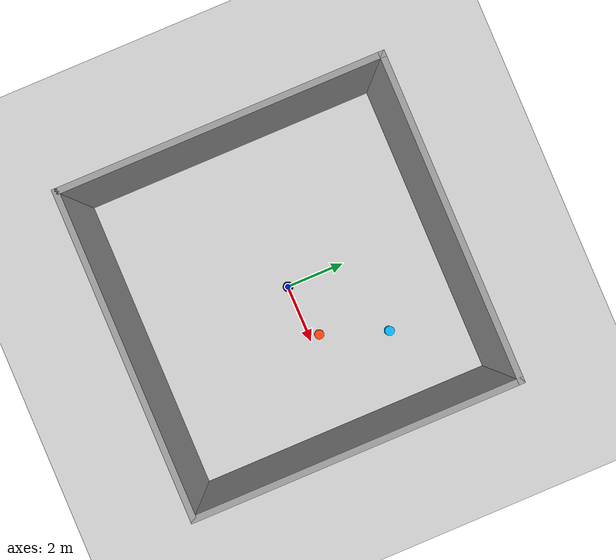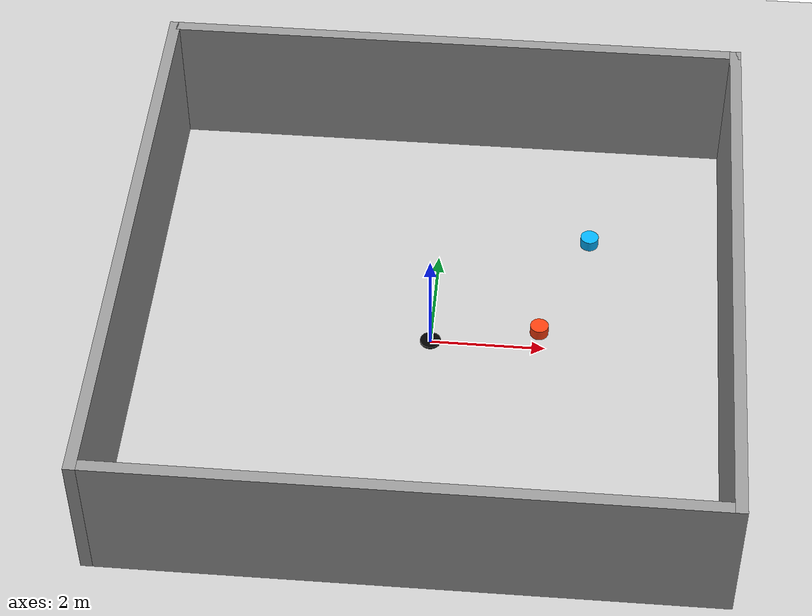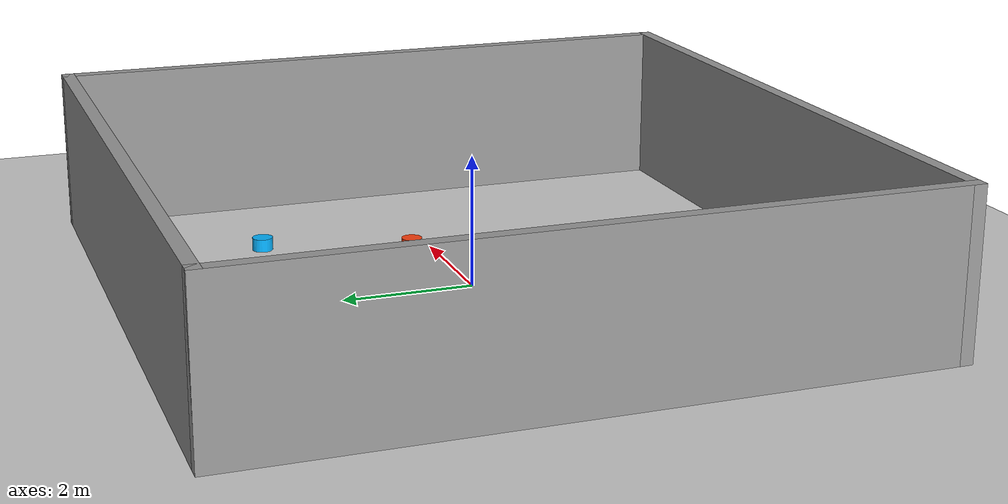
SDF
<?xml version="1.0" ?>
<sdf version="1.5">
  <world name="default">
    <include>
      <uri>model://sun</uri>
    </include>

    <include>
      <uri>model://ground_plane</uri>
    </include>

    <model name="pursuer_umbrella">
      <pose>1.88 0.34 0.12 0 0 0</pose>
      <link name="body">
        <collision name="collision">
          <geometry>
            <cylinder>
              <radius>0.16</radius>
              <length>0.20</length>
            </cylinder>
          </geometry>
        </collision>
        <visual name="visual">
          <geometry>
            <cylinder>
              <radius>0.16</radius>
              <length>0.20</length>
            </cylinder>
          </geometry>
          <material>
            <ambient>1.0 0.12 0.04 1</ambient>
            <diffuse>1.0 0.25 0.06 1</diffuse>
          </material>
        </visual>
        <inertial>
          <mass>1.0</mass>
          <inertia>
            <ixx>0.005</ixx>
            <iyy>0.005</iyy>
            <izz>0.005</izz>
            <ixy>0</ixy>
            <ixz>0</ixz>
            <iyz>0</iyz>
          </inertia>
        </inertial>
      </link>
    </model>

    <model name="evader_umbrella">
      <pose>2.68 2.55 0.12 0 0 0</pose>
      <link name="body">
        <collision name="collision">
          <geometry>
            <cylinder>
              <radius>0.16</radius>
              <length>0.20</length>
            </cylinder>
          </geometry>
        </collision>
        <visual name="visual">
          <geometry>
            <cylinder>
              <radius>0.16</radius>
              <length>0.20</length>
            </cylinder>
          </geometry>
          <material>
            <ambient>0.00 0.45 1.0 1</ambient>
            <diffuse>0.02 0.70 1.0 1</diffuse>
          </material>
        </visual>
        <inertial>
          <mass>1.0</mass>
          <inertia>
            <ixx>0.005</ixx>
            <iyy>0.005</iyy>
            <izz>0.005</izz>
            <ixy>0</ixy>
            <ixz>0</ixz>
            <iyz>0</iyz>
          </inertia>
        </inertial>
      </link>
    </model>

    <model name="umbrella_center_marker">
      <pose>0 0 0.035 0 0 0</pose>
      <static>1</static>
      <link name="body">
        <visual name="visual">
          <geometry>
            <cylinder>
              <radius>0.18</radius>
              <length>0.04</length>
            </cylinder>
          </geometry>
          <material>
            <ambient>0 0 0 1</ambient>
            <diffuse>0 0 0 1</diffuse>
          </material>
        </visual>
      </link>
    </model>

    <model name="myroom10">
      <pose frame="">0 0 0 0 0 0</pose>
      <link name="Wall_4">
        <collision name="Wall_4_Collision">
          <geometry>
            <box>
              <size>10.4 0.2 2.5</size>
            </box>
          </geometry>
          <pose frame="">0 0 1.25 0 0 0</pose>
        </collision>
        <visual name="Wall_4_Visual">
          <pose frame="">0 0 1.25 0 0 0</pose>
          <geometry>
            <box>
              <size>10.4 0.2 2.5</size>
            </box>
          </geometry>
          <material>
            <script>
              <uri>file://media/materials/scripts/gazebo.material</uri>
              <name>Gazebo/Grey</name>
            </script>
            <ambient>1 1 1 1</ambient>
          </material>
        </visual>
        <pose frame="">-5.1 0 0 0 0 1.5708</pose>
      </link>
      <link name="Wall_5">
        <collision name="Wall_5_Collision">
          <geometry>
            <box>
              <size>10.4 0.2 2.5</size>
            </box>
          </geometry>
          <pose frame="">0 0 1.25 0 0 0</pose>
        </collision>
        <visual name="Wall_5_Visual">
          <pose frame="">0 0 1.25 0 0 0</pose>
          <geometry>
            <box>
              <size>10.4 0.2 2.5</size>
            </box>
          </geometry>
          <material>
            <script>
              <uri>file://media/materials/scripts/gazebo.material</uri>
              <name>Gazebo/Grey</name>
            </script>
            <ambient>1 1 1 1</ambient>
          </material>
        </visual>
        <pose frame="">0 5.1 0 0 0 0</pose>
      </link>
      <link name="Wall_6">
        <collision name="Wall_6_Collision">
          <geometry>
            <box>
              <size>10.4 0.2 2.5</size>
            </box>
          </geometry>
          <pose frame="">0 0 1.25 0 0 0</pose>
        </collision>
        <visual name="Wall_6_Visual">
          <pose frame="">0 0 1.25 0 0 0</pose>
          <geometry>
            <box>
              <size>10.4 0.2 2.5</size>
            </box>
          </geometry>
          <material>
            <script>
              <uri>file://media/materials/scripts/gazebo.material</uri>
              <name>Gazebo/Grey</name>
            </script>
            <ambient>1 1 1 1</ambient>
          </material>
        </visual>
        <pose frame="">5.1 0 0 0 0 -1.5708</pose>
      </link>
      <link name="Wall_7">
        <collision name="Wall_7_Collision">
          <geometry>
            <box>
              <size>10.4 0.2 2.5</size>
            </box>
          </geometry>
          <pose frame="">0 0 1.25 0 0 0</pose>
        </collision>
        <visual name="Wall_7_Visual">
          <pose frame="">0 0 1.25 0 0 0</pose>
          <geometry>
            <box>
              <size>10.4 0.2 2.5</size>
            </box>
          </geometry>
          <material>
            <script>
              <uri>file://media/materials/scripts/gazebo.material</uri>
              <name>Gazebo/Grey</name>
            </script>
            <ambient>1 1 1 1</ambient>
          </material>
        </visual>
        <pose frame="">0 -5.1 0 0 0 3.14159</pose>
      </link>
      <static>1</static>
    </model>
  </world>
</sdf>
